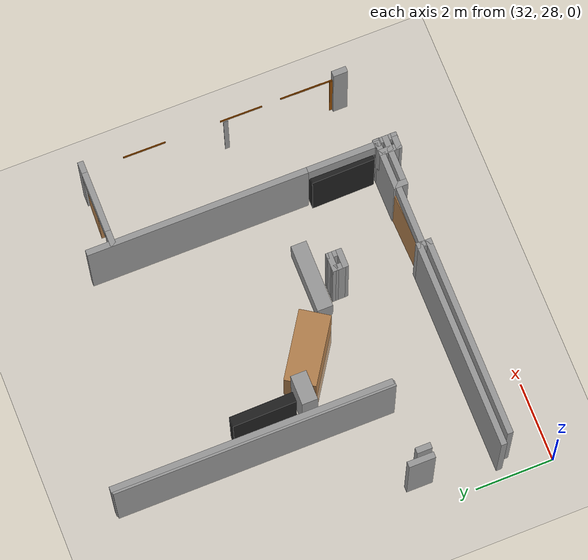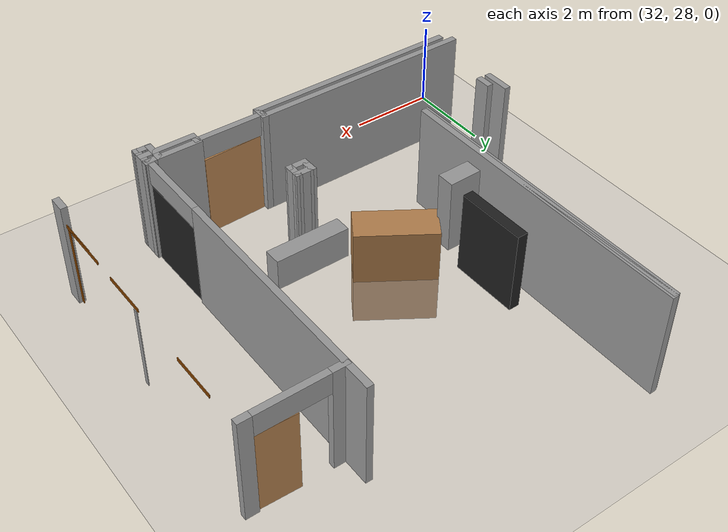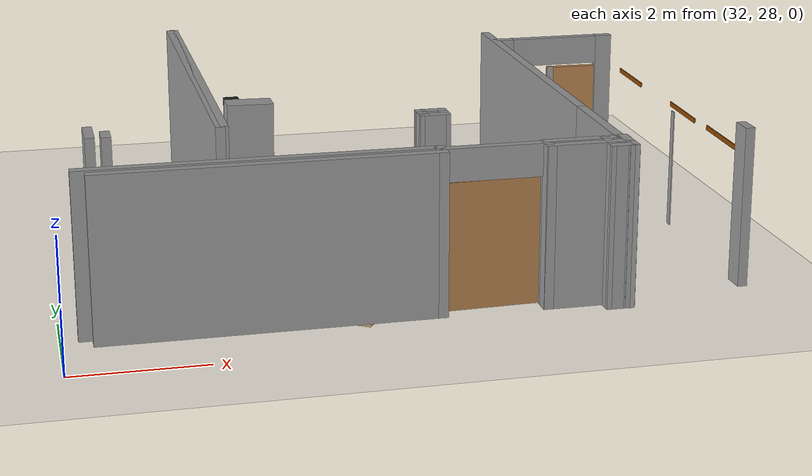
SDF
<sdf version="1.6">
 <world name="default">
  <model name="ground_plane">
   <static>1</static>
   <link name="link">
    <collision name="collision">
     <geometry><plane><normal>0 0 1</normal><size>100 100</size></plane></geometry>
     <surface><friction><ode><mu>100</mu><mu2>50</mu2></ode></friction></surface>
    </collision>
    <visual name="visual">
     <cast_shadows>0</cast_shadows>
     <geometry><plane><normal>0 0 1</normal><size>100 100</size></plane></geometry>
     <material>
      <script><uri>file://media/materials/scripts/gazebo.material</uri><name>Gazebo/Grey</name></script>
     </material>
    </visual>
   </link>
  </model>
  <model name="CVSSP">
   <pose>23.8714 24.094 0 0 -0 0</pose>
   <link name="Wall_10">
    <collision name="Wall_10_Collision">
     <geometry><box><size>0.244894 0.15 2.5</size></box></geometry>
     <pose>0 0 1.25 0 -0 0</pose>
    </collision>
    <visual name="Wall_10_Visual">
     <pose>0 0 1.25 0 -0 0</pose>
     <geometry><box><size>0.244894 0.15 2.5</size></box></geometry>
     <material>
      <script><uri>file://media/materials/scripts/gazebo.material</uri><name>Gazebo/Grey</name></script>
      <ambient>1 1 1 1</ambient>
     </material>
    </visual>
    <pose>16.3427 4.74414 0 0 -0 3.0813</pose>
   </link>
   <link name="Wall_101">
    <collision name="Wall_101_Collision">
     <geometry><box><size>0.38805 0.15 2.5</size></box></geometry>
     <pose>0 0 1.25 0 -0 0</pose>
    </collision>
    <visual name="Wall_101_Visual">
     <pose>0 0 1.25 0 -0 0</pose>
     <geometry><box><size>0.38805 0.15 2.5</size></box></geometry>
     <material>
      <script><uri>file://media/materials/scripts/gazebo.material</uri><name>Gazebo/Grey</name></script>
      <ambient>1 1 1 1</ambient>
     </material>
    </visual>
    <pose>13.6125 5.08725 0 0 0 -1.5708</pose>
   </link>
   <link name="Wall_103">
    <pose>14.4193 5.12692 0 0 -0 3.13861</pose>
    <visual name="Wall_103_Visual_0">
     <pose>-0.803949 0 1.25 0 -0 0</pose>
     <geometry><box><size>0.113401 0.15 2.5</size></box></geometry>
     <material>
      <script><uri>file://media/materials/scripts/gazebo.material</uri><name>Gazebo/Grey</name></script>
      <ambient>1 1 1 1</ambient>
     </material>
    </visual>
    <collision name="Wall_103_Collision_0">
     <geometry><box><size>0.113401 0.15 2.5</size></box></geometry>
     <pose>-0.803949 0 1.25 0 -0 0</pose>
    </collision>
    <visual name="Wall_103_Visual_1">
     <pose>0.799121 0 1.25 0 -0 0</pose>
     <geometry><box><size>0.123058 0.15 2.5</size></box></geometry>
     <material>
      <script><uri>file://media/materials/scripts/gazebo.material</uri><name>Gazebo/Grey</name></script>
      <ambient>1 1 1 1</ambient>
     </material>
    </visual>
    <collision name="Wall_103_Collision_1">
     <geometry><box><size>0.123058 0.15 2.5</size></box></geometry>
     <pose>0.799121 0 1.25 0 -0 0</pose>
    </collision>
    <visual name="Wall_103_Visual_2">
     <pose>-0.004828 0 2.25 0 -0 0</pose>
     <geometry><box><size>1.48484 0.15 0.5</size></box></geometry>
     <material>
      <script><uri>file://media/materials/scripts/gazebo.material</uri><name>Gazebo/Grey</name></script>
      <ambient>1 1 1 1</ambient>
     </material>
    </visual>
    <collision name="Wall_103_Collision_2">
     <geometry><box><size>1.48484 0.15 0.5</size></box></geometry>
     <pose>-0.004828 0 2.25 0 -0 0</pose>
    </collision>
   </link>
   <link name="Wall_105">
    <collision name="Wall_105_Collision">
     <geometry><box><size>0.321526 0.15 2.5</size></box></geometry>
     <pose>0 0 1.25 0 -0 0</pose>
    </collision>
    <visual name="Wall_105_Visual">
     <pose>0 0 1.25 0 -0 0</pose>
     <geometry><box><size>0.321526 0.15 2.5</size></box></geometry>
     <material>
      <script><uri>file://media/materials/scripts/gazebo.material</uri><name>Gazebo/Grey</name></script>
      <ambient>1 1 1 1</ambient>
     </material>
    </visual>
    <pose>15.205 5.04453 0 0 0 -1.5708</pose>
   </link>
   <link name="Wall_106">
    <collision name="Wall_106_Collision">
     <geometry><box><size>1.33354 0.15 2.5</size></box></geometry>
     <pose>0 0 1.25 0 -0 0</pose>
    </collision>
    <visual name="Wall_106_Visual">
     <pose>0 0 1.25 0 -0 0</pose>
     <geometry><box><size>1.33354 0.15 2.5</size></box></geometry>
     <material>
      <script><uri>file://media/materials/scripts/gazebo.material</uri><name>Gazebo/Grey</name></script>
      <ambient>1 1 1 1</ambient>
     </material>
    </visual>
    <pose>15.7968 4.95877 0 0 -0 0</pose>
   </link>
   <link name="Wall_108">
    <collision name="Wall_108_Collision">
     <geometry><box><size>0.336995 0.15 2.5</size></box></geometry>
     <pose>0 0 1.25 0 -0 0</pose>
    </collision>
    <visual name="Wall_108_Visual">
     <pose>0 0 1.25 0 -0 0</pose>
     <geometry><box><size>0.336995 0.15 2.5</size></box></geometry>
     <material>
      <script><uri>file://media/materials/scripts/gazebo.material</uri><name>Gazebo/Grey</name></script>
      <ambient>1 1 1 1</ambient>
     </material>
    </visual>
    <pose>16.2019 4.74711 0 0 -0 3.1404</pose>
   </link>
   <link name="Wall_109">
    <collision name="Wall_109_Collision">
     <geometry><box><size>0.578815 0.15 2.5</size></box></geometry>
     <pose>0 0 1.25 0 -0 0</pose>
    </collision>
    <visual name="Wall_109_Visual">
     <pose>0 0 1.25 0 -0 0</pose>
     <geometry><box><size>0.578815 0.15 2.5</size></box></geometry>
     <material>
      <script><uri>file://media/materials/scripts/gazebo.material</uri><name>Gazebo/Grey</name></script>
      <ambient>1 1 1 1</ambient>
     </material>
    </visual>
    <pose>16.1084 4.96163 0 0 -0 1.5708</pose>
   </link>
   <link name="Wall_110">
    <collision name="Wall_110_Collision">
     <geometry><box><size>0.435877 0.15 2.5</size></box></geometry>
     <pose>0 0 1.25 0 -0 0</pose>
    </collision>
    <visual name="Wall_110_Visual">
     <pose>0 0 1.25 0 -0 0</pose>
     <geometry><box><size>0.435877 0.15 2.5</size></box></geometry>
     <material>
      <script><uri>file://media/materials/scripts/gazebo.material</uri><name>Gazebo/Grey</name></script>
      <ambient>1 1 1 1</ambient>
     </material>
    </visual>
    <pose>16.2513 5.17604 0 0 -0 0</pose>
   </link>
   <link name="Wall_112">
    <collision name="Wall_112_Collision">
     <geometry><box><size>1.05344 0.15 2.5</size></box></geometry>
     <pose>0 0 1.25 0 -0 0</pose>
    </collision>
    <visual name="Wall_112_Visual">
     <pose>0 0 1.25 0 -0 0</pose>
     <geometry><box><size>1.05344 0.15 2.5</size></box></geometry>
     <material>
      <script><uri>file://media/materials/scripts/gazebo.material</uri><name>Gazebo/Grey</name></script>
      <ambient>1 1 1 1</ambient>
     </material>
    </visual>
    <pose>15.6567 5.17604 0 0 -0 3.14159</pose>
   </link>
   <link name="Wall_140">
    <collision name="Wall_140_Collision">
     <geometry><box><size>0.370487 0.15 2.5</size></box></geometry>
     <pose>0 0 1.25 0 -0 0</pose>
    </collision>
    <visual name="Wall_140_Visual">
     <pose>0 0 1.25 0 -0 0</pose>
     <geometry><box><size>0.370487 0.15 2.5</size></box></geometry>
     <material>
      <script><uri>file://media/materials/scripts/gazebo.material</uri><name>Gazebo/Grey</name></script>
      <ambient>1 1 1 1</ambient>
     </material>
    </visual>
    <pose>18.3803 5.35184 0 0 -0 1.5708</pose>
   </link>
   <link name="Wall_228">
    <pose>17.4069 11.9566 0 0 -0 0</pose>
    <visual name="Wall_228_Visual_0">
     <pose>-0.929285 0 1.25 0 -0 0</pose>
     <geometry><box><size>0.391429 0.15 2.5</size></box></geometry>
     <material>
      <script><uri>file://media/materials/scripts/gazebo.material</uri><name>Gazebo/Grey</name></script>
      <ambient>0.588235 0.588235 0.588235 1</ambient>
     </material>
    </visual>
    <collision name="Wall_228_Collision_0">
     <geometry><box><size>0.391429 0.15 2.5</size></box></geometry>
     <pose>-0.929285 0 1.25 0 -0 0</pose>
    </collision>
    <visual name="Wall_228_Visual_1">
     <pose>0.97634 0 1.25 0 -0 0</pose>
     <geometry><box><size>0.297321 0.15 2.5</size></box></geometry>
     <material>
      <script><uri>file://media/materials/scripts/gazebo.material</uri><name>Gazebo/Grey</name></script>
      <ambient>0.588235 0.588235 0.588235 1</ambient>
     </material>
    </visual>
    <collision name="Wall_228_Collision_1">
     <geometry><box><size>0.297321 0.15 2.5</size></box></geometry>
     <pose>0.97634 0 1.25 0 -0 0</pose>
    </collision>
    <visual name="Wall_228_Visual_2">
     <pose>0.047054 0 2.25 0 -0 0</pose>
     <geometry><box><size>1.56125 0.15 0.5</size></box></geometry>
     <material>
      <script><uri>file://media/materials/scripts/gazebo.material</uri><name>Gazebo/Grey</name></script>
      <ambient>0.588235 0.588235 0.588235 1</ambient>
     </material>
    </visual>
    <collision name="Wall_228_Collision_2">
     <geometry><box><size>1.56125 0.15 0.5</size></box></geometry>
     <pose>0.047054 0 2.25 0 -0 0</pose>
    </collision>
   </link>
   <link name="Wall_41">
    <collision name="Wall_41_Collision">
     <geometry><box><size>0.67 0.15 2.5</size></box></geometry>
     <pose>0 0 1.25 0 -0 0</pose>
    </collision>
    <visual name="Wall_41_Visual">
     <pose>0 0 1.25 0 -0 0</pose>
     <geometry><box><size>0.67 0.15 2.5</size></box></geometry>
     <material>
      <script><uri>file://media/materials/scripts/gazebo.material</uri><name>Gazebo/Grey</name></script>
      <ambient>1 1 1 1</ambient>
     </material>
    </visual>
    <pose>8.7575 7.13868 0 0 0 -1.5708</pose>
   </link>
   <link name="Wall_45">
    <collision name="Wall_45_Collision">
     <geometry><box><size>0.380217 0.15 2.5</size></box></geometry>
     <pose>0 0 1.25 0 -0 0</pose>
    </collision>
    <visual name="Wall_45_Visual">
     <pose>0 0 1.25 0 -0 0</pose>
     <geometry><box><size>0.380217 0.15 2.5</size></box></geometry>
     <material>
      <script><uri>file://media/materials/scripts/gazebo.material</uri><name>Gazebo/Grey</name></script>
      <ambient>1 1 1 1</ambient>
     </material>
    </visual>
    <pose>8.9975 6.98369 0 0 0 -1.5708</pose>
   </link>
   <link name="Wall_48">
    <collision name="Wall_48_Collision">
     <geometry><box><size>0.485616 0.15 2.5</size></box></geometry>
     <pose>0 0 1.25 0 -0 0</pose>
    </collision>
    <visual name="Wall_48_Visual">
     <pose>0 0 1.25 0 -0 0</pose>
     <geometry><box><size>0.485616 0.15 2.5</size></box></geometry>
     <material>
      <script><uri>file://media/materials/scripts/gazebo.material</uri><name>Gazebo/Grey</name></script>
      <ambient>1 1 1 1</ambient>
     </material>
    </visual>
    <pose>13.9944 7.29164 0 0 0 -0.000129</pose>
   </link>
   <link name="Wall_49">
    <collision name="Wall_49_Collision">
     <geometry><box><size>0.405637 0.15 2.5</size></box></geometry>
     <pose>0 0 1.25 0 -0 0</pose>
    </collision>
    <visual name="Wall_49_Visual">
     <pose>0 0 1.25 0 -0 0</pose>
     <geometry><box><size>0.405637 0.15 2.5</size></box></geometry>
     <material>
      <script><uri>file://media/materials/scripts/gazebo.material</uri><name>Gazebo/Grey</name></script>
      <ambient>1 1 1 1</ambient>
     </material>
    </visual>
    <pose>14.162 7.1638 0 0 0 -1.57228</pose>
   </link>
   <link name="Wall_50">
    <collision name="Wall_50_Collision">
     <geometry><box><size>0.483145 0.15 2.5</size></box></geometry>
     <pose>0 0 1.25 0 -0 0</pose>
    </collision>
    <visual name="Wall_50_Visual">
     <pose>0 0 1.25 0 -0 0</pose>
     <geometry><box><size>0.483145 0.15 2.5</size></box></geometry>
     <material>
      <script><uri>file://media/materials/scripts/gazebo.material</uri><name>Gazebo/Grey</name></script>
      <ambient>1 1 1 1</ambient>
     </material>
    </visual>
    <pose>13.9952 7.03593 0 0 0 -3.14129</pose>
   </link>
   <link name="Wall_51">
    <collision name="Wall_51_Collision">
     <geometry><box><size>0.405791 0.15 2.5</size></box></geometry>
     <pose>0 0 1.25 0 -0 0</pose>
    </collision>
    <visual name="Wall_51_Visual">
     <pose>0 0 1.25 0 -0 0</pose>
     <geometry><box><size>0.405791 0.15 2.5</size></box></geometry>
     <material>
      <script><uri>file://media/materials/scripts/gazebo.material</uri><name>Gazebo/Grey</name></script>
      <ambient>1 1 1 1</ambient>
     </material>
    </visual>
    <pose>13.8276 7.16378 0 0 -0 1.5792</pose>
   </link>
   <link name="Wall_53">
    <collision name="Wall_53_Collision">
     <geometry><box><size>7.09358 0.15 2.5</size></box></geometry>
     <pose>0 0 1.25 0 -0 0</pose>
    </collision>
    <visual name="Wall_53_Visual">
     <pose>0 0 1.25 0 -0 0</pose>
     <geometry><box><size>7.09358 0.15 2.5</size></box></geometry>
     <material>
      <script><uri>file://media/materials/scripts/gazebo.material</uri><name>Gazebo/Grey</name></script>
      <ambient>1 1 1 1</ambient>
     </material>
    </visual>
    <pose>10.7501 10.5821 0 0 0 -1.5708</pose>
   </link>
   <link name="Wall_6">
    <pose>16.34 8.87509 0 0 0 -1.5708</pose>
    <visual name="Wall_6_Visual_0">
     <pose>-0.935121 0 1.25 0 -0 0</pose>
     <geometry><box><size>5.62976 0.15 2.5</size></box></geometry>
     <material>
      <script><uri>file://media/materials/scripts/gazebo.material</uri><name>Gazebo/Grey</name></script>
      <ambient>0.588235 0.588235 0.588235 1</ambient>
     </material>
    </visual>
    <collision name="Wall_6_Collision_0">
     <geometry><box><size>5.62976 0.15 2.5</size></box></geometry>
     <pose>-0.935121 0 1.25 0 -0 0</pose>
    </collision>
    <visual name="Wall_6_Visual_1">
     <pose>3.6759 0 1.25 0 -0 0</pose>
     <geometry><box><size>0.148208 0.15 2.5</size></box></geometry>
     <material>
      <script><uri>file://media/materials/scripts/gazebo.material</uri><name>Gazebo/Grey</name></script>
      <ambient>0.588235 0.588235 0.588235 1</ambient>
     </material>
    </visual>
    <collision name="Wall_6_Collision_1">
     <geometry><box><size>0.148208 0.15 2.5</size></box></geometry>
     <pose>3.6759 0 1.25 0 -0 0</pose>
    </collision>
    <visual name="Wall_6_Visual_2">
     <pose>2.74078 0 2.25 0 -0 0</pose>
     <geometry><box><size>1.72203 0.15 0.5</size></box></geometry>
     <material>
      <script><uri>file://media/materials/scripts/gazebo.material</uri><name>Gazebo/Grey</name></script>
      <ambient>0.588235 0.588235 0.588235 1</ambient>
     </material>
    </visual>
    <collision name="Wall_6_Collision_2">
     <geometry><box><size>1.72203 0.15 0.5</size></box></geometry>
     <pose>2.74078 0 2.25 0 -0 0</pose>
    </collision>
   </link>
   <link name="Wall_60">
    <collision name="Wall_60_Collision">
     <geometry><box><size>7.09041 0.15 2.5</size></box></geometry>
     <pose>0 0 1.25 0 -0 0</pose>
    </collision>
    <visual name="Wall_60_Visual">
     <pose>0 0 1.25 0 -0 0</pose>
     <geometry><box><size>7.09041 0.15 2.5</size></box></geometry>
     <material>
      <script><uri>file://media/materials/scripts/gazebo.material</uri><name>Gazebo/Grey</name></script>
      <ambient>0.588235 0.588235 0.588235 1</ambient>
     </material>
    </visual>
    <pose>10.6949 10.5553 0 0 0 -1.57007</pose>
   </link>
   <link name="Wall_8">
    <collision name="Wall_8_Collision">
     <geometry><box><size>0.200072 0.15 2.5</size></box></geometry>
     <pose>0 0 1.25 0 -0 0</pose>
    </collision>
    <visual name="Wall_8_Visual">
     <pose>0 0 1.25 0 -0 0</pose>
     <geometry><box><size>0.200072 0.15 2.5</size></box></geometry>
     <material>
      <script><uri>file://media/materials/scripts/gazebo.material</uri><name>Gazebo/Grey</name></script>
      <ambient>1 1 1 1</ambient>
     </material>
    </visual>
    <pose>16.3651 5.20082 0 0 -0 0.028929</pose>
   </link>
   <link name="Wall_9">
    <collision name="Wall_9_Collision">
     <geometry><box><size>0.610308 0.15 2.5</size></box></geometry>
     <pose>0 0 1.25 0 -0 0</pose>
    </collision>
    <visual name="Wall_9_Visual">
     <pose>0 0 1.25 0 -0 0</pose>
     <geometry><box><size>0.610308 0.15 2.5</size></box></geometry>
     <material>
      <script><uri>file://media/materials/scripts/gazebo.material</uri><name>Gazebo/Grey</name></script>
      <ambient>1 1 1 1</ambient>
     </material>
    </visual>
    <pose>16.3901 4.97141 0 0 0 -1.5708</pose>
   </link>
   <link name="Wall_95">
    <collision name="Wall_95_Collision">
     <geometry><box><size>5.10938 0.15 2.5</size></box></geometry>
     <pose>0 0 1.25 0 -0 0</pose>
    </collision>
    <visual name="Wall_95_Visual">
     <pose>0 0 1.25 0 -0 0</pose>
     <geometry><box><size>5.10938 0.15 2.5</size></box></geometry>
     <material>
      <script><uri>file://media/materials/scripts/gazebo.material</uri><name>Gazebo/Grey</name></script>
      <ambient>1 1 1 1</ambient>
     </material>
    </visual>
    <pose>11.1328 4.96823 0 0 -0 0</pose>
   </link>
   <link name="Wall_99">
    <collision name="Wall_99_Collision">
     <geometry><box><size>5.30775 0.15 2.5</size></box></geometry>
     <pose>0 0 1.25 0 -0 0</pose>
    </collision>
    <visual name="Wall_99_Visual">
     <pose>0 0 1.25 0 -0 0</pose>
     <geometry><box><size>5.30775 0.15 2.5</size></box></geometry>
     <material>
      <script><uri>file://media/materials/scripts/gazebo.material</uri><name>Gazebo/Grey</name></script>
      <ambient>1 1 1 1</ambient>
     </material>
    </visual>
    <pose>11.0336 5.20628 0 0 -0 3.14159</pose>
   </link>
   <static>1</static>
  </model>
  <model name="basic_ply_door_corrected_clone_clone_clone_1">
   <link name="link">
    <pose>-0 0 1.00385 0 -0 0</pose>
    <inertial>
     <mass>0.5167</mass>
     <inertia>
      <ixx>0.00086117</ixx>
      <ixy>0</ixy>
      <ixz>0</ixz>
      <iyy>0.00086117</iyy>
      <iyz>0</iyz>
      <izz>0.00086117</izz>
     </inertia>
    </inertial>
    <gravity>0</gravity>
    <visual name="visual">
     <geometry><box><size>0.88 0.1 1.96</size></box></geometry>
     <material>
      <script><uri>file://media/materials/scripts/gazebo.material</uri><name>Gazebo/Wood</name></script>
      <shader type="pixel"><normal_map>__default__</normal_map></shader>
      <ambient>1 1 1 1</ambient>
      <diffuse>1 1 1 1</diffuse>
      <specular>0.2 0.2 0.2 1</specular>
      <emissive>0 0 0 1</emissive>
     </material>
    </visual>
    <collision name="collision">
     <geometry><box><size>0.88 0.1 1.96</size></box></geometry>
     <surface>
      <friction>
       <ode><mu>1</mu><mu2>1</mu2><fdir1>0 0 0</fdir1><slip1>0</slip1><slip2>0</slip2></ode>
       <torsional>
        <coefficient>1</coefficient>
        <patch_radius>0</patch_radius>
        <surface_radius>0.01</surface_radius>
        <use_patch_radius>0</use_patch_radius>
        <ode><slip>0</slip></ode>
       </torsional>
      </friction>
      <bounce><restitution_coefficient>0</restitution_coefficient><threshold>1e+06</threshold></bounce>
      <contact>
       <collide_without_contact>0</collide_without_contact>
       <collide_without_contact_bitmask>1</collide_without_contact_bitmask>
       <collide_bitmask>1</collide_bitmask>
       <ode>
        <soft_cfm>0</soft_cfm>
        <soft_erp>0.2</soft_erp>
        <kp>100000</kp>
        <kd>100</kd>
        <max_vel>100</max_vel>
        <min_depth>0.001</min_depth>
       </ode>
       <bullet>
        <split_impulse>1</split_impulse>
        <split_impulse_penetration_threshold>-0.01</split_impulse_penetration_threshold>
        <soft_cfm>0</soft_cfm>
        <soft_erp>0.2</soft_erp>
        <kp>100000</kp>
        <kd>100</kd>
       </bullet>
      </contact>
     </surface>
    </collision>
   </link>
   <static>1</static>
   <pose>41.6497 36.0398 -0.036806 0 0 -0.036583</pose>
  </model>
  <model name="plastic_box_0_clone_0_clone">
   <link name="Wall">
    <pose>0 0 0.1985 0 -0 0</pose>
    <inertial>
     <mass>5</mass>
     <inertia><ixx>0.1022</ixx><iyy>0.4107</iyy><izz>0.3815</izz><ixy>0</ixy><ixz>0</ixz><iyz>0</iyz></inertia>
    </inertial>
    <gravity>0</gravity>
    <visual name="Wall_Visual">
     <geometry><box><size>1.75 0.4 0.75</size></box></geometry>
     <material>
      <script><uri>file://media/materials/scripts/gazebo.material</uri><name>Gazebo/Grey</name></script>
      <ambient>1 1 1 1</ambient>
      <shader type="pixel"><normal_map>__default__</normal_map></shader>
      <diffuse>0.7 0.7 0.7 1</diffuse>
      <specular>0.01 0.01 0.01 1</specular>
      <emissive>0 0 0 1</emissive>
     </material>
    </visual>
    <collision name="Wall_Collision">
     <geometry><box><size>1.75 0.4 0.75</size></box></geometry>
     <surface>
      <friction>
       <ode><mu>1</mu><mu2>1</mu2><fdir1>0 0 0</fdir1><slip1>0</slip1><slip2>0</slip2></ode>
       <torsional>
        <coefficient>1</coefficient>
        <patch_radius>0</patch_radius>
        <surface_radius>0</surface_radius>
        <use_patch_radius>1</use_patch_radius>
        <ode><slip>0</slip></ode>
       </torsional>
      </friction>
      <bounce><restitution_coefficient>0</restitution_coefficient><threshold>1e+06</threshold></bounce>
      <contact>
       <collide_without_contact>0</collide_without_contact>
       <collide_without_contact_bitmask>1</collide_without_contact_bitmask>
       <collide_bitmask>1</collide_bitmask>
       <ode>
        <soft_cfm>0</soft_cfm>
        <soft_erp>0.2</soft_erp>
        <kp>1e+13</kp>
        <kd>1</kd>
        <max_vel>0.01</max_vel>
        <min_depth>0</min_depth>
       </ode>
       <bullet>
        <split_impulse>1</split_impulse>
        <split_impulse_penetration_threshold>-0.01</split_impulse_penetration_threshold>
        <soft_cfm>0</soft_cfm>
        <soft_erp>0.2</soft_erp>
        <kp>1e+13</kp>
        <kd>1</kd>
       </bullet>
      </contact>
     </surface>
    </collision>
   </link>
   <static>1</static>
   <pose>38.1149 31.8033 0.519923 0 -0 0</pose>
  </model>
  <model name="metal_door_wide">
   <link name="link">
    <inertial>
     <mass>1</mass>
     <inertia>
      <ixx>0.166667</ixx>
      <ixy>0</ixy>
      <ixz>0</ixz>
      <iyy>0.166667</iyy>
      <iyz>0</iyz>
      <izz>0.166667</izz>
     </inertia>
    </inertial>
    <gravity>0</gravity>
    <visual name="visual">
     <geometry><box><size>0.249393 1.61603 1.94787</size></box></geometry>
     <material>
      <script><name>Gazebo/Black</name><uri>file://media/materials/scripts/gazebo.material</uri></script>
      <shader type="pixel"><normal_map>__default__</normal_map></shader>
      <ambient>0.01 0.001 0.001 1</ambient>
      <diffuse>0.7 0.7 0.7 1</diffuse>
      <specular>0.01 0.01 0.01 1</specular>
      <emissive>0 0 0 1</emissive>
     </material>
    </visual>
    <collision name="collision">
     <geometry><box><size>0.249393 1.61603 1.94787</size></box></geometry>
     <surface>
      <friction>
       <ode><mu>1</mu><mu2>1</mu2><fdir1>0 0 0</fdir1><slip1>0</slip1><slip2>0</slip2></ode>
       <torsional>
        <coefficient>1</coefficient>
        <patch_radius>0</patch_radius>
        <surface_radius>0</surface_radius>
        <use_patch_radius>1</use_patch_radius>
        <ode><slip>0</slip></ode>
       </torsional>
      </friction>
      <bounce><restitution_coefficient>0</restitution_coefficient><threshold>1e+06</threshold></bounce>
      <contact>
       <collide_without_contact>0</collide_without_contact>
       <collide_without_contact_bitmask>1</collide_without_contact_bitmask>
       <collide_bitmask>1</collide_bitmask>
       <ode>
        <soft_cfm>0</soft_cfm>
        <soft_erp>0.2</soft_erp>
        <kp>1e+13</kp>
        <kd>1</kd>
        <max_vel>0.01</max_vel>
        <min_depth>0</min_depth>
       </ode>
       <bullet>
        <split_impulse>1</split_impulse>
        <split_impulse_penetration_threshold>-0.01</split_impulse_penetration_threshold>
        <soft_cfm>0</soft_cfm>
        <soft_erp>0.2</soft_erp>
        <kp>1e+13</kp>
        <kd>1</kd>
       </bullet>
      </contact>
     </surface>
    </collision>
   </link>
   <static>1</static>
   <pose>40.1518 30.2272 1.00357 -0.00287 -0.001978 0.014033</pose>
  </model>
  <model name="basic_ply_door_corrected_wider">
   <link name="link">
    <pose>0.319611 -0 1.00385 0 -0 0.034884</pose>
    <inertial>
     <mass>0.5167</mass>
     <inertia>
      <ixx>0.00086117</ixx>
      <ixy>0</ixy>
      <ixz>0</ixz>
      <iyy>0.00086117</iyy>
      <iyz>0</iyz>
      <izz>0.00086117</izz>
     </inertia>
    </inertial>
    <visual name="visual">
     <geometry><box><size>1.4 0.1 1.96</size></box></geometry>
     <material>
      <script><uri>file://media/materials/scripts/gazebo.material</uri><name>Gazebo/Wood</name></script>
      <shader type="pixel"><normal_map>__default__</normal_map></shader>
      <ambient>1 1 1 1</ambient>
      <diffuse>1 1 1 1</diffuse>
      <specular>0.2 0.2 0.2 1</specular>
      <emissive>0 0 0 1</emissive>
     </material>
    </visual>
    <collision name="collision">
     <geometry><box><size>0.88 0.1 1.96</size></box></geometry>
     <surface>
      <friction>
       <ode><mu>1</mu><mu2>1</mu2><fdir1>0 0 0</fdir1><slip1>0</slip1><slip2>0</slip2></ode>
       <torsional>
        <coefficient>1</coefficient>
        <patch_radius>0</patch_radius>
        <surface_radius>0.01</surface_radius>
        <use_patch_radius>0</use_patch_radius>
        <ode><slip>0</slip></ode>
       </torsional>
      </friction>
      <bounce><restitution_coefficient>0</restitution_coefficient><threshold>1e+06</threshold></bounce>
      <contact>
       <collide_without_contact>0</collide_without_contact>
       <collide_without_contact_bitmask>1</collide_without_contact_bitmask>
       <collide_bitmask>1</collide_bitmask>
       <ode>
        <soft_cfm>0</soft_cfm>
        <soft_erp>0.2</soft_erp>
        <kp>100000</kp>
        <kd>100</kd>
        <max_vel>100</max_vel>
        <min_depth>0.001</min_depth>
       </ode>
       <bullet>
        <split_impulse>1</split_impulse>
        <split_impulse_penetration_threshold>-0.01</split_impulse_penetration_threshold>
        <soft_cfm>0</soft_cfm>
        <soft_erp>0.2</soft_erp>
        <kp>100000</kp>
        <kd>100</kd>
       </bullet>
      </contact>
     </surface>
    </collision>
   </link>
   <static>1</static>
   <pose>37.9694 29.2523 -0 0 -0 0</pose>
  </model>
  <model name="metal_hinge_clone">
   <link name="link">
    <inertial>
     <mass>1</mass>
     <inertia>
      <ixx>0.166667</ixx>
      <ixy>0</ixy>
      <ixz>0</ixz>
      <iyy>0.166667</iyy>
      <iyz>0</iyz>
      <izz>0.166667</izz>
     </inertia>
    </inertial>
    <visual name="visual">
     <geometry><box><size>0.018685 0.118108 1.95261</size></box></geometry>
     <material>
      <script><name>Gazebo/Grey</name><uri>file://media/materials/scripts/gazebo.material</uri></script>
      <shader type="pixel"/>
     </material>
    </visual>
    <collision name="collision">
     <geometry><box><size>0.018685 0.118108 1.95261</size></box></geometry>
     <surface>
      <friction>
       <ode><mu>1</mu><mu2>1</mu2><fdir1>0 0 0</fdir1><slip1>0</slip1><slip2>0</slip2></ode>
       <torsional>
        <coefficient>1</coefficient>
        <patch_radius>0</patch_radius>
        <surface_radius>0</surface_radius>
        <use_patch_radius>1</use_patch_radius>
        <ode><slip>0</slip></ode>
       </torsional>
      </friction>
      <bounce><restitution_coefficient>0</restitution_coefficient><threshold>1e+06</threshold></bounce>
      <contact>
       <collide_without_contact>0</collide_without_contact>
       <collide_without_contact_bitmask>1</collide_without_contact_bitmask>
       <collide_bitmask>1</collide_bitmask>
       <ode>
        <soft_cfm>0</soft_cfm>
        <soft_erp>0.2</soft_erp>
        <kp>1e+13</kp>
        <kd>1</kd>
        <max_vel>0.01</max_vel>
        <min_depth>0</min_depth>
       </ode>
       <bullet>
        <split_impulse>1</split_impulse>
        <split_impulse_penetration_threshold>-0.01</split_impulse_penetration_threshold>
        <soft_cfm>0</soft_cfm>
        <soft_erp>0.2</soft_erp>
        <kp>1e+13</kp>
        <kd>1</kd>
       </bullet>
      </contact>
     </surface>
    </collision>
   </link>
   <static>1</static>
   <pose>42.2579 32.4014 0.984523 0 -0 0</pose>
  </model>
  <model name="metal_hinge_clone_2_clone">
   <link name="link">
    <inertial>
     <mass>1</mass>
     <inertia>
      <ixx>0.166667</ixx>
      <ixy>0</ixy>
      <ixz>0</ixz>
      <iyy>0.166667</iyy>
      <iyz>0</iyz>
      <izz>0.166667</izz>
     </inertia>
    </inertial>
    <visual name="visual">
     <geometry><box><size>0.018685 0.118108 1.95261</size></box></geometry>
     <material>
      <script><name>Gazebo/Grey</name><uri>file://media/materials/scripts/gazebo.material</uri></script>
      <shader type="pixel"/>
     </material>
    </visual>
    <collision name="collision">
     <geometry><box><size>0.018685 0.118108 1.95261</size></box></geometry>
     <surface>
      <friction>
       <ode><mu>1</mu><mu2>1</mu2><fdir1>0 0 0</fdir1><slip1>0</slip1><slip2>0</slip2></ode>
       <torsional>
        <coefficient>1</coefficient>
        <patch_radius>0</patch_radius>
        <surface_radius>0</surface_radius>
        <use_patch_radius>1</use_patch_radius>
        <ode><slip>0</slip></ode>
       </torsional>
      </friction>
      <bounce><restitution_coefficient>0</restitution_coefficient><threshold>1e+06</threshold></bounce>
      <contact>
       <collide_without_contact>0</collide_without_contact>
       <collide_without_contact_bitmask>1</collide_without_contact_bitmask>
       <collide_bitmask>1</collide_bitmask>
       <ode>
        <soft_cfm>0</soft_cfm>
        <soft_erp>0.2</soft_erp>
        <kp>1e+13</kp>
        <kd>1</kd>
        <max_vel>0.01</max_vel>
        <min_depth>0</min_depth>
       </ode>
       <bullet>
        <split_impulse>1</split_impulse>
        <split_impulse_penetration_threshold>-0.01</split_impulse_penetration_threshold>
        <soft_cfm>0</soft_cfm>
        <soft_erp>0.2</soft_erp>
        <kp>1e+13</kp>
        <kd>1</kd>
       </bullet>
      </contact>
     </surface>
    </collision>
   </link>
   <static>1</static>
   <pose>41.2559 36.0028 0.984523 0 0 -1.58649</pose>
  </model>
  <model name="oak_frame_0_clone_clone_3_clone_0">
   <link name="link">
    <inertial>
     <mass>1</mass>
     <inertia>
      <ixx>0.166667</ixx>
      <ixy>0</ixy>
      <ixz>0</ixz>
      <iyy>0.166667</iyy>
      <iyz>0</iyz>
      <izz>0.166667</izz>
     </inertia>
    </inertial>
    <visual name="visual">
     <geometry><box><size>0.018685 0.076446 2.026</size></box></geometry>
     <material>
      <script><name>Gazebo/Grey</name><uri>file://media/materials/scripts/gazebo.material</uri></script>
      <shader type="pixel"><normal_map>__default__</normal_map></shader>
      <diffuse>0.58 0.29 0 0</diffuse>
      <ambient>0.58 0.29 0 1</ambient>
      <specular>0.01 0.01 0.01 1</specular>
      <emissive>0 0 0 1</emissive>
     </material>
    </visual>
    <collision name="collision">
     <geometry><box><size>0.018685 0.076446 2.026</size></box></geometry>
     <surface>
      <friction>
       <ode><mu>1</mu><mu2>1</mu2><fdir1>0 0 0</fdir1><slip1>0</slip1><slip2>0</slip2></ode>
       <torsional>
        <coefficient>1</coefficient>
        <patch_radius>0</patch_radius>
        <surface_radius>0</surface_radius>
        <use_patch_radius>1</use_patch_radius>
        <ode><slip>0</slip></ode>
       </torsional>
      </friction>
      <bounce><restitution_coefficient>0</restitution_coefficient><threshold>1e+06</threshold></bounce>
      <contact>
       <collide_without_contact>0</collide_without_contact>
       <collide_without_contact_bitmask>1</collide_without_contact_bitmask>
       <collide_bitmask>1</collide_bitmask>
       <ode>
        <soft_cfm>0</soft_cfm>
        <soft_erp>0.2</soft_erp>
        <kp>1e+13</kp>
        <kd>1</kd>
        <max_vel>0.01</max_vel>
        <min_depth>0</min_depth>
       </ode>
       <bullet>
        <split_impulse>1</split_impulse>
        <split_impulse_penetration_threshold>-0.01</split_impulse_penetration_threshold>
        <soft_cfm>0</soft_cfm>
        <soft_erp>0.2</soft_erp>
        <kp>1e+13</kp>
        <kd>1</kd>
       </bullet>
      </contact>
     </surface>
    </collision>
   </link>
   <static>1</static>
   <pose>42.244 29.6694 1.03242 0 -0 0</pose>
  </model>
  <model name="oak_frame_0_clone_0_clone_1">
   <link name="link">
    <inertial>
     <mass>1</mass>
     <inertia>
      <ixx>0.166667</ixx>
      <ixy>0</ixy>
      <ixz>0</ixz>
      <iyy>0.166667</iyy>
      <iyz>0</iyz>
      <izz>0.166667</izz>
     </inertia>
    </inertial>
    <visual name="visual">
     <geometry><box><size>0.018685 0.076446 1.08038</size></box></geometry>
     <material>
      <script><name>Gazebo/Grey</name><uri>file://media/materials/scripts/gazebo.material</uri></script>
      <shader type="pixel"><normal_map>__default__</normal_map></shader>
      <diffuse>0.58 0.29 0 0</diffuse>
      <ambient>0.58 0.29 0 1</ambient>
      <specular>0.01 0.01 0.01 1</specular>
      <emissive>0 0 0 1</emissive>
     </material>
    </visual>
    <collision name="collision">
     <geometry><box><size>0.018685 0.076446 1.08038</size></box></geometry>
     <surface>
      <friction>
       <ode><mu>1</mu><mu2>1</mu2><fdir1>0 0 0</fdir1><slip1>0</slip1><slip2>0</slip2></ode>
       <torsional>
        <coefficient>1</coefficient>
        <patch_radius>0</patch_radius>
        <surface_radius>0</surface_radius>
        <use_patch_radius>1</use_patch_radius>
        <ode><slip>0</slip></ode>
       </torsional>
      </friction>
      <bounce><restitution_coefficient>0</restitution_coefficient><threshold>1e+06</threshold></bounce>
      <contact>
       <collide_without_contact>0</collide_without_contact>
       <collide_without_contact_bitmask>1</collide_without_contact_bitmask>
       <collide_bitmask>1</collide_bitmask>
       <ode>
        <soft_cfm>0</soft_cfm>
        <soft_erp>0.2</soft_erp>
        <kp>1e+13</kp>
        <kd>1</kd>
        <max_vel>0.01</max_vel>
        <min_depth>0</min_depth>
       </ode>
       <bullet>
        <split_impulse>1</split_impulse>
        <split_impulse_penetration_threshold>-0.01</split_impulse_penetration_threshold>
        <soft_cfm>0</soft_cfm>
        <soft_erp>0.2</soft_erp>
        <kp>1e+13</kp>
        <kd>1</kd>
       </bullet>
      </contact>
     </surface>
    </collision>
   </link>
   <static>1</static>
   <pose>42.2679 30.4306 2.05002 -1.55236 0 0</pose>
  </model>
  <model name="oak_frame_0_clone_0_clone_2">
   <link name="link">
    <inertial>
     <mass>1</mass>
     <inertia>
      <ixx>0.166667</ixx>
      <ixy>0</ixy>
      <ixz>0</ixz>
      <iyy>0.166667</iyy>
      <iyz>0</iyz>
      <izz>0.166667</izz>
     </inertia>
    </inertial>
    <visual name="visual">
     <geometry><box><size>0.018685 0.076446 1.08038</size></box></geometry>
     <material>
      <script><name>Gazebo/Grey</name><uri>file://media/materials/scripts/gazebo.material</uri></script>
      <shader type="pixel"><normal_map>__default__</normal_map></shader>
      <diffuse>0.58 0.29 0 0</diffuse>
      <ambient>0.58 0.29 0 1</ambient>
      <specular>0.01 0.01 0.01 1</specular>
      <emissive>0 0 0 1</emissive>
     </material>
    </visual>
    <collision name="collision">
     <geometry><box><size>0.018685 0.076446 1.08038</size></box></geometry>
     <surface>
      <friction>
       <ode><mu>1</mu><mu2>1</mu2><fdir1>0 0 0</fdir1><slip1>0</slip1><slip2>0</slip2></ode>
       <torsional>
        <coefficient>1</coefficient>
        <patch_radius>0</patch_radius>
        <surface_radius>0</surface_radius>
        <use_patch_radius>1</use_patch_radius>
        <ode><slip>0</slip></ode>
       </torsional>
      </friction>
      <bounce><restitution_coefficient>0</restitution_coefficient><threshold>1e+06</threshold></bounce>
      <contact>
       <collide_without_contact>0</collide_without_contact>
       <collide_without_contact_bitmask>1</collide_without_contact_bitmask>
       <collide_bitmask>1</collide_bitmask>
       <ode>
        <soft_cfm>0</soft_cfm>
        <soft_erp>0.2</soft_erp>
        <kp>1e+13</kp>
        <kd>1</kd>
        <max_vel>0.01</max_vel>
        <min_depth>0</min_depth>
       </ode>
       <bullet>
        <split_impulse>1</split_impulse>
        <split_impulse_penetration_threshold>-0.01</split_impulse_penetration_threshold>
        <soft_cfm>0</soft_cfm>
        <soft_erp>0.2</soft_erp>
        <kp>1e+13</kp>
        <kd>1</kd>
       </bullet>
      </contact>
     </surface>
    </collision>
   </link>
   <static>1</static>
   <pose>42.2619 30.0545 2.05002 -1.55236 0 0</pose>
  </model>
  <model name="oak_frame_0_clone_0_clone_3">
   <link name="link">
    <inertial>
     <mass>1</mass>
     <inertia>
      <ixx>0.166667</ixx>
      <ixy>0</ixy>
      <ixz>0</ixz>
      <iyy>0.166667</iyy>
      <iyz>0</iyz>
      <izz>0.166667</izz>
     </inertia>
    </inertial>
    <visual name="visual">
     <geometry><box><size>0.018685 0.076446 1.08038</size></box></geometry>
     <material>
      <script><name>Gazebo/Grey</name><uri>file://media/materials/scripts/gazebo.material</uri></script>
      <shader type="pixel"><normal_map>__default__</normal_map></shader>
      <diffuse>0.58 0.29 0 0</diffuse>
      <ambient>0.58 0.29 0 1</ambient>
      <specular>0.01 0.01 0.01 1</specular>
      <emissive>0 0 0 1</emissive>
     </material>
    </visual>
    <collision name="collision">
     <geometry><box><size>0.018685 0.076446 1.08038</size></box></geometry>
     <surface>
      <friction>
       <ode><mu>1</mu><mu2>1</mu2><fdir1>0 0 0</fdir1><slip1>0</slip1><slip2>0</slip2></ode>
       <torsional>
        <coefficient>1</coefficient>
        <patch_radius>0</patch_radius>
        <surface_radius>0</surface_radius>
        <use_patch_radius>1</use_patch_radius>
        <ode><slip>0</slip></ode>
       </torsional>
      </friction>
      <bounce><restitution_coefficient>0</restitution_coefficient><threshold>1e+06</threshold></bounce>
      <contact>
       <collide_without_contact>0</collide_without_contact>
       <collide_without_contact_bitmask>1</collide_without_contact_bitmask>
       <collide_bitmask>1</collide_bitmask>
       <ode>
        <soft_cfm>0</soft_cfm>
        <soft_erp>0.2</soft_erp>
        <kp>1e+13</kp>
        <kd>1</kd>
        <max_vel>0.01</max_vel>
        <min_depth>0</min_depth>
       </ode>
       <bullet>
        <split_impulse>1</split_impulse>
        <split_impulse_penetration_threshold>-0.01</split_impulse_penetration_threshold>
        <soft_cfm>0</soft_cfm>
        <soft_erp>0.2</soft_erp>
        <kp>1e+13</kp>
        <kd>1</kd>
       </bullet>
      </contact>
     </surface>
    </collision>
   </link>
   <static>1</static>
   <pose>42.262 31.9964 2.05002 -1.55236 0 0</pose>
  </model>
  <model name="oak_frame_0_clone_0_clone_5">
   <link name="link">
    <inertial>
     <mass>1</mass>
     <inertia>
      <ixx>0.166667</ixx>
      <ixy>0</ixy>
      <ixz>0</ixz>
      <iyy>0.166667</iyy>
      <iyz>0</iyz>
      <izz>0.166667</izz>
     </inertia>
    </inertial>
    <visual name="visual">
     <geometry><box><size>0.018685 0.076446 1.08038</size></box></geometry>
     <material>
      <script><name>Gazebo/Grey</name><uri>file://media/materials/scripts/gazebo.material</uri></script>
      <shader type="pixel"><normal_map>__default__</normal_map></shader>
      <diffuse>0.58 0.29 0 0</diffuse>
      <ambient>0.58 0.29 0 1</ambient>
      <specular>0.01 0.01 0.01 1</specular>
      <emissive>0 0 0 1</emissive>
     </material>
    </visual>
    <collision name="collision">
     <geometry><box><size>0.018685 0.076446 1.08038</size></box></geometry>
     <surface>
      <friction>
       <ode><mu>1</mu><mu2>1</mu2><fdir1>0 0 0</fdir1><slip1>0</slip1><slip2>0</slip2></ode>
       <torsional>
        <coefficient>1</coefficient>
        <patch_radius>0</patch_radius>
        <surface_radius>0</surface_radius>
        <use_patch_radius>1</use_patch_radius>
        <ode><slip>0</slip></ode>
       </torsional>
      </friction>
      <bounce><restitution_coefficient>0</restitution_coefficient><threshold>1e+06</threshold></bounce>
      <contact>
       <collide_without_contact>0</collide_without_contact>
       <collide_without_contact_bitmask>1</collide_without_contact_bitmask>
       <collide_bitmask>1</collide_bitmask>
       <ode>
        <soft_cfm>0</soft_cfm>
        <soft_erp>0.2</soft_erp>
        <kp>1e+13</kp>
        <kd>1</kd>
        <max_vel>0.01</max_vel>
        <min_depth>0</min_depth>
       </ode>
       <bullet>
        <split_impulse>1</split_impulse>
        <split_impulse_penetration_threshold>-0.01</split_impulse_penetration_threshold>
        <soft_cfm>0</soft_cfm>
        <soft_erp>0.2</soft_erp>
        <kp>1e+13</kp>
        <kd>1</kd>
       </bullet>
      </contact>
     </surface>
    </collision>
   </link>
   <static>1</static>
   <pose>42.2673 34.4836 2.04981 -1.55236 0 0</pose>
  </model>
  <model name="plastic_box_0_clone_0_clone_clone">
   <link name="Wall">
    <pose>0 0 0.1985 0 -0 0</pose>
    <inertial>
     <mass>5</mass>
     <inertia><ixx>0.1022</ixx><iyy>0.4107</iyy><izz>0.3815</izz><ixy>0</ixy><ixz>0</ixz><iyz>0</iyz></inertia>
    </inertial>
    <gravity>0</gravity>
    <visual name="Wall_Visual">
     <geometry><box><size>1.75 0.4 0.75</size></box></geometry>
     <material>
      <script><uri>file://media/materials/scripts/gazebo.material</uri><name>Gazebo/Grey</name></script>
      <ambient>1 1 1 1</ambient>
      <shader type="pixel"><normal_map>__default__</normal_map></shader>
      <diffuse>0.7 0.7 0.7 1</diffuse>
      <specular>0.01 0.01 0.01 1</specular>
      <emissive>0 0 0 1</emissive>
     </material>
    </visual>
    <collision name="Wall_Collision">
     <geometry><box><size>1.75 0.4 0.75</size></box></geometry>
     <surface>
      <friction>
       <ode><mu>1</mu><mu2>1</mu2><fdir1>0 0 0</fdir1><slip1>0</slip1><slip2>0</slip2></ode>
       <torsional>
        <coefficient>1</coefficient>
        <patch_radius>0</patch_radius>
        <surface_radius>0</surface_radius>
        <use_patch_radius>1</use_patch_radius>
        <ode><slip>0</slip></ode>
       </torsional>
      </friction>
      <bounce><restitution_coefficient>0</restitution_coefficient><threshold>1e+06</threshold></bounce>
      <contact>
       <collide_without_contact>0</collide_without_contact>
       <collide_without_contact_bitmask>1</collide_without_contact_bitmask>
       <collide_bitmask>1</collide_bitmask>
       <ode>
        <soft_cfm>0</soft_cfm>
        <soft_erp>0.2</soft_erp>
        <kp>1e+13</kp>
        <kd>1</kd>
        <max_vel>0.01</max_vel>
        <min_depth>0</min_depth>
       </ode>
       <bullet>
        <split_impulse>1</split_impulse>
        <split_impulse_penetration_threshold>-0.01</split_impulse_penetration_threshold>
        <soft_cfm>0</soft_cfm>
        <soft_erp>0.2</soft_erp>
        <kp>1e+13</kp>
        <kd>1</kd>
       </bullet>
      </contact>
     </surface>
    </collision>
   </link>
   <static>1</static>
   <pose>35.4688 33.117 1.47097 0 -1.55363 0</pose>
  </model>
  <model name="ply_wood_desk">
   <link name="link">
    <pose>0 0 0.05 0 -0 0</pose>
    <inertial>
     <mass>0.5167</mass>
     <inertia>
      <ixx>0.00086117</ixx>
      <ixy>0</ixy>
      <ixz>0</ixz>
      <iyy>0.00086117</iyy>
      <iyz>0</iyz>
      <izz>0.00086117</izz>
     </inertia>
    </inertial>
    <visual name="visual">
     <geometry><box><size>1.8 0.8 2.4</size></box></geometry>
     <material>
      <script><uri>file://media/materials/scripts/gazebo.material</uri><name>Gazebo/Wood</name></script>
      <shader type="pixel"><normal_map>__default__</normal_map></shader>
      <ambient>1 1 1 1</ambient>
      <diffuse>1 1 1 1</diffuse>
      <specular>0.2 0.2 0.2 1</specular>
      <emissive>0 0 0 1</emissive>
     </material>
    </visual>
    <collision name="collision">
     <geometry><box><size>0.1 0.1 0.1</size></box></geometry>
     <surface>
      <friction>
       <ode><mu>1</mu><mu2>1</mu2><fdir1>0 0 0</fdir1><slip1>0</slip1><slip2>0</slip2></ode>
       <torsional>
        <coefficient>1</coefficient>
        <patch_radius>0</patch_radius>
        <surface_radius>0.01</surface_radius>
        <use_patch_radius>0</use_patch_radius>
        <ode><slip>0</slip></ode>
       </torsional>
      </friction>
      <bounce><restitution_coefficient>0</restitution_coefficient><threshold>1e+06</threshold></bounce>
      <contact>
       <collide_without_contact>0</collide_without_contact>
       <collide_without_contact_bitmask>1</collide_without_contact_bitmask>
       <collide_bitmask>1</collide_bitmask>
       <ode>
        <soft_cfm>0</soft_cfm>
        <soft_erp>0.2</soft_erp>
        <kp>100000</kp>
        <kd>100</kd>
        <max_vel>100</max_vel>
        <min_depth>0.001</min_depth>
       </ode>
       <bullet>
        <split_impulse>1</split_impulse>
        <split_impulse_penetration_threshold>-0.01</split_impulse_penetration_threshold>
        <soft_cfm>0</soft_cfm>
        <soft_erp>0.2</soft_erp>
        <kp>100000</kp>
        <kd>100</kd>
       </bullet>
      </contact>
     </surface>
    </collision>
   </link>
   <static>1</static>
   <pose>36.4474 32.5736 -0 0 0 -0.58099</pose>
  </model>
  <model name="metal_door_wide_clone">
   <link name="link">
    <inertial>
     <mass>1</mass>
     <inertia>
      <ixx>0.166667</ixx>
      <ixy>0</ixy>
      <ixz>0</ixz>
      <iyy>0.166667</iyy>
      <iyz>0</iyz>
      <izz>0.166667</izz>
     </inertia>
    </inertial>
    <gravity>0</gravity>
    <visual name="visual">
     <geometry><box><size>0.249393 1.61603 1.94787</size></box></geometry>
     <material>
      <script><name>Gazebo/Black</name><uri>file://media/materials/scripts/gazebo.material</uri></script>
      <shader type="pixel"><normal_map>__default__</normal_map></shader>
      <ambient>0.01 0.001 0.001 1</ambient>
      <diffuse>0.7 0.7 0.7 1</diffuse>
      <specular>0.01 0.01 0.01 1</specular>
      <emissive>0 0 0 1</emissive>
     </material>
    </visual>
    <collision name="collision">
     <geometry><box><size>0.249393 1.61603 1.94787</size></box></geometry>
     <surface>
      <friction>
       <ode><mu>1</mu><mu2>1</mu2><fdir1>0 0 0</fdir1><slip1>0</slip1><slip2>0</slip2></ode>
       <torsional>
        <coefficient>1</coefficient>
        <patch_radius>0</patch_radius>
        <surface_radius>0</surface_radius>
        <use_patch_radius>1</use_patch_radius>
        <ode><slip>0</slip></ode>
       </torsional>
      </friction>
      <bounce><restitution_coefficient>0</restitution_coefficient><threshold>1e+06</threshold></bounce>
      <contact>
       <collide_without_contact>0</collide_without_contact>
       <collide_without_contact_bitmask>1</collide_without_contact_bitmask>
       <collide_bitmask>1</collide_bitmask>
       <ode>
        <soft_cfm>0</soft_cfm>
        <soft_erp>0.2</soft_erp>
        <kp>1e+13</kp>
        <kd>1</kd>
        <max_vel>0.01</max_vel>
        <min_depth>0</min_depth>
       </ode>
       <bullet>
        <split_impulse>1</split_impulse>
        <split_impulse_penetration_threshold>-0.01</split_impulse_penetration_threshold>
        <soft_cfm>0</soft_cfm>
        <soft_erp>0.2</soft_erp>
        <kp>1e+13</kp>
        <kd>1</kd>
       </bullet>
      </contact>
     </surface>
    </collision>
   </link>
   <static>1</static>
   <pose>35.2438 34.1793 1.00357 -0.00287 -0.001978 0.014033</pose>
  </model>
 </world>
</sdf>
